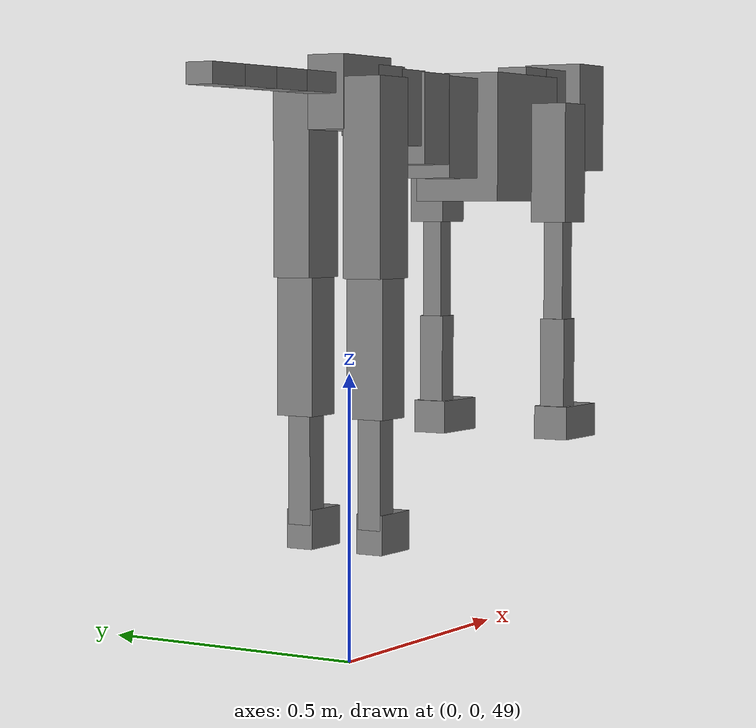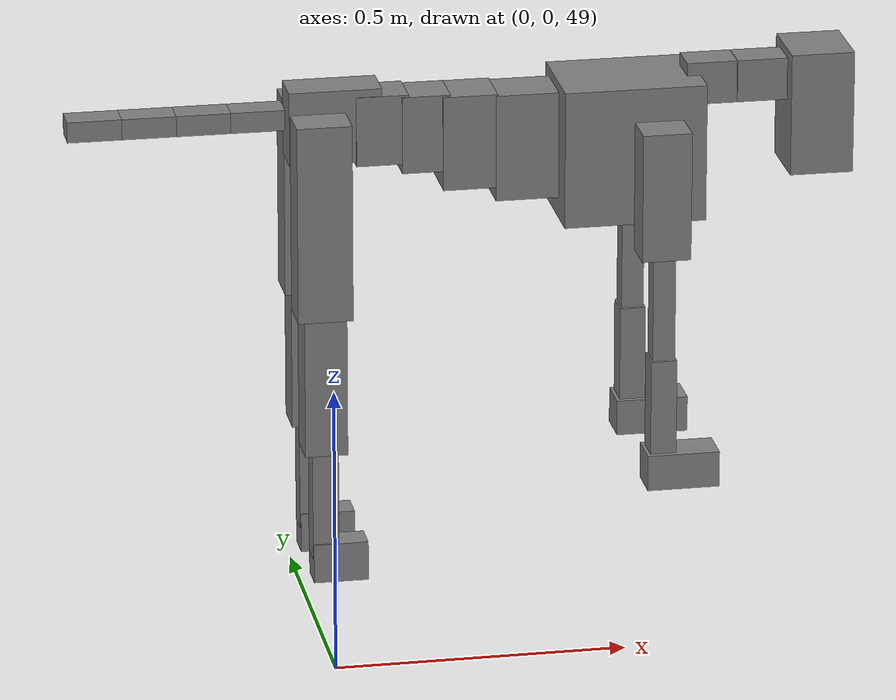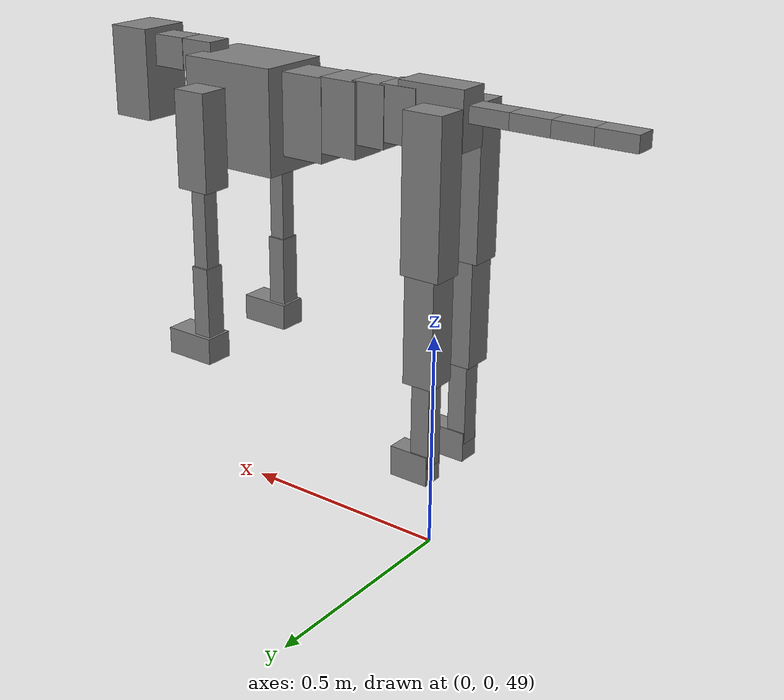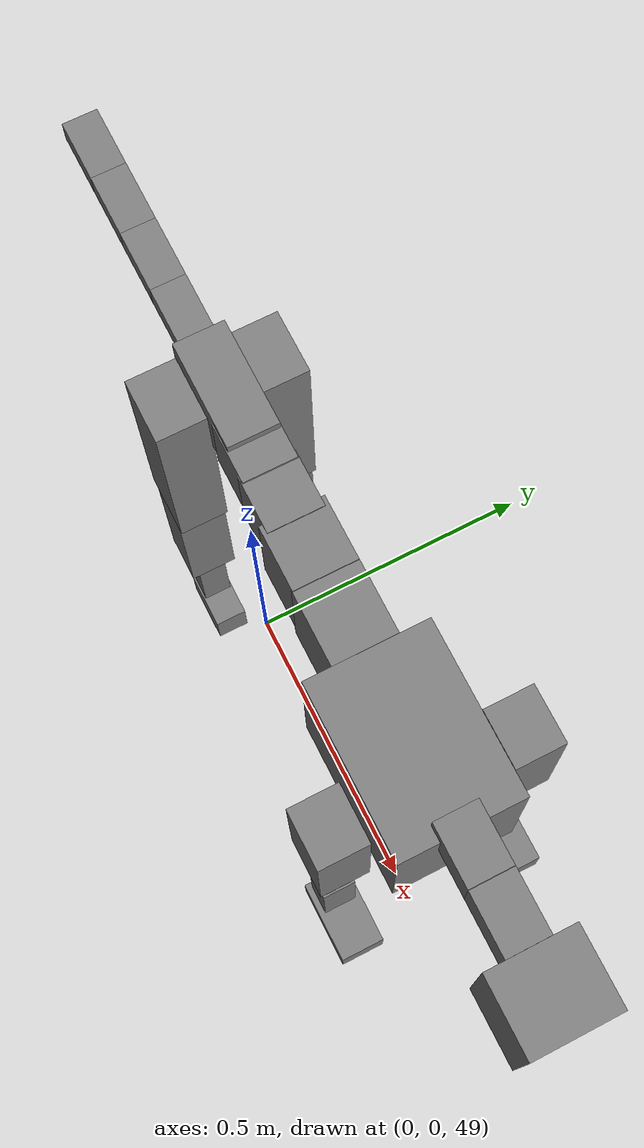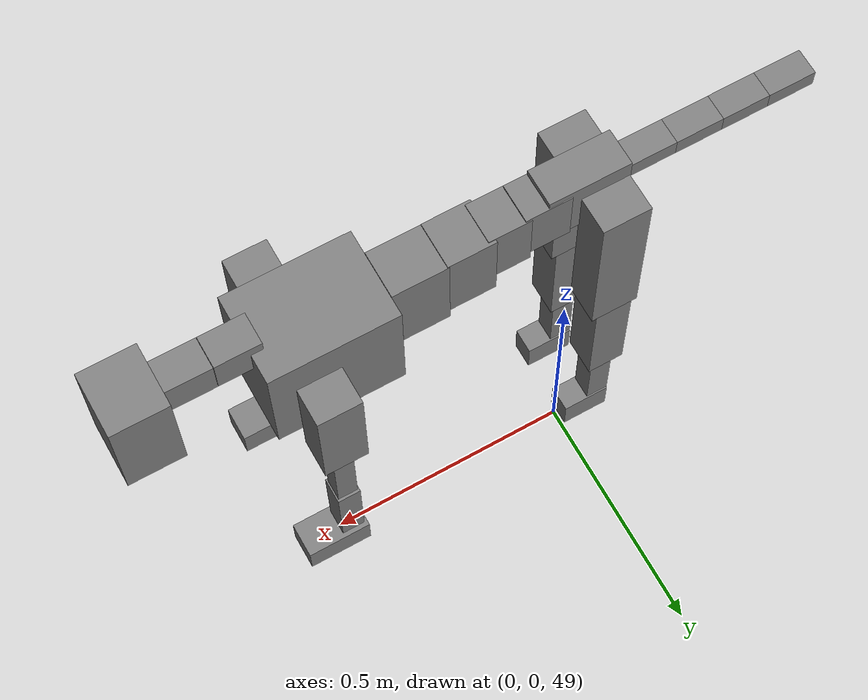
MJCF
<mujoco model="dog">

    <default>
        <joint armature="0.02" stiffness="1" damping="0.2" limited="true"/>
        <geom condim="3" friction="1 0.05 0.05" margin="0.01"/>
        <motor ctrllimited="true" ctrlrange="-1.0 1.0" forcelimited="true" gear="50"/>
    </default>

    <compiler inertiafromgeom="true" angle="radian"/>

    <option timestep="0.016" iterations="50" tolerance="1e-10" solver="Newton" jacobian="dense" cone="pyramidal"/>

    <size nconmax="20000" njmax="60000" nstack="5000000"/>
    <visual>
        <map force="0.1" zfar="30"/>
        <rgba haze="0.15 0.25 0.35 1"/>
        <quality shadowsize="2048"/>
        <global offwidth="800" offheight="800"/>
    </visual>

    <asset>
        <texture type="skybox" builtin="gradient" rgb1="0.3 0.5 0.7" rgb2="0 0 0" width="512" height="512"/>
        <texture name="texplane" type="2d" builtin="checker" rgb1=".2 .3 .4" rgb2=".1 0.15 0.2" width="512" height="512"
                 mark="cross" markrgb=".8 .8 .8"/>
        <texture name="texgeom" type="cube" builtin="flat" mark="cross" width="127" height="1278" rgb1="0.8 0.6 0.4"
                 rgb2="0.8 0.6 0.4" markrgb="1 1 1" random="0.01"/>

        <material name="matplane" reflectance="0.3" texture="texplane" texrepeat="1 1" texuniform="true"/>
        <material name="matgeom" texture="texgeom" texuniform="true" rgba="0.8 0.6 .4 1"/>
    </asset>

    <worldbody>
        <geom name="floor" pos="0 0 0" size="0 0 .25" type="plane" material="matplane" condim="3"/>

        <light directional="false" diffuse=".2 .2 .2" specular="0 0 0" pos="0 0 5" dir="0 0 -1" castshadow="false"/>
        <light mode="targetbodycom" target="torso" directional="false" diffuse=".8 .8 .8" specular="0.3 0.3 0.3"
               pos="0 0 4.0" dir="0 0 -1"/>

        <body name="root" pos="0 0 50">
            <freejoint name="root_1"/>
            <geom type="box" pos="0 0 -0.02" size="0.0774  0.0358  0.063" density="2030"/>

            <body name="spine1" pos="0.054 0 0">
                <joint name="spine1_y" axis="0 1 0" range="0 0.7" limited="true"/>
                <geom type="box" pos="0.02375 0 -0.03" size="0.04375  0.0375  0.05985" density="2030"/>

                <body name="spine2" pos="0.0612 0 0">
                    <joint name="spine2_y" axis="0 1 0" range="-0.15 0.15" limited="true"/>
                    <geom type="box" pos="0.03555  0  -0.04" size="0.04055  0.039  0.06615" density="2030"/>

                    <body name="spine3" pos="0.0730 0 0">
                        <joint name="spine3_y" axis="0 1 0" range="-0.15 0.15" limited="true"/>
                        <geom type="box" pos="0.03555  0  -0.057" size="0.04555  0.0445  0.081" density="2030"/>

                        <body name="spine4" pos="0.0780 0 0">
                            <joint name="spine4_y" axis="0 1 0" range="-0.15 0.15" limited="true"/>
                            <geom type="box" pos="0.05265  0  -0.07" size="0.05265  0.045  0.09135" density="2030"/>

                            <body name="torso" pos="0.1082 0 0">
                                <joint name="torso_y" axis="0 1 0" range="-0.15 0.15" limited="true"/>
                                <geom type="box" pos="0.11925  0  -0.085" size="0.11925  0.085  0.11745"
                                      density="2030"/>

                                <body name="neck1" pos="0.2160  0   0.0180">
                                    <joint name="neck1_y" axis="0 1 0" range="-1.2  -1" limited="true"/>
                                    <geom type="box" pos="0.0423  0  0" size="0.0423  0.03  0.036" density="2325"/>

                                    <body name="neck2" pos="0.0853  0  0">
                                        <joint name="neck2_y" axis="0 1 0" range="0.1  0" limited="true"/>
                                        <geom type="box" pos="0.0423  0  0" size="0.0423  0.03  0.036" density="2325"/>

                                        <body name="head" pos="0.0853  0  0">
                                            <joint name="head_y" axis="0 1 0" range="-0.3  -0.2" limited="true"/>
                                            <geom type="box" pos="0.0531  0  -0.055" size="0.0531  0.06  0.1044"
                                                  density="4030"/>

                                        </body>
                                    </body>
                                </body>

                                <body name="front_shoulder" pos="0.156  0   -0.0480">
                                    <joint name="front_shoulder_y" axis="0 1 0" range="-1 1.5" limited="true"/>
                                    <geom type="box" pos="0 0.13 -0.0835" size="0.0409  0.0349  0.1101" density="1158"/>
                                    <geom type="box" pos="0 -0.13 -0.0835" size="0.0409  0.0349  0.1101"
                                          density="1158"/>

                                    <body name="front_elbow" pos="0  0  -0.1669">
                                        <joint name="front_elbow_y" axis="0 1 0" range="-2 0" limited="true"/>
                                        <geom type="box" pos="0 0.13 -0.1104" size="0.0189  0.0193  0.1104"
                                              density="1081"/>
                                        <geom type="box" pos="0 -0.13 -0.1104" size="0.0189  0.0193  0.1104"
                                              density="1081"/>

                                        <body name="front_wrist" pos="0  0  -0.2207">
                                            <joint name="front_wrist_y" axis="0 1 0" range="-0.2 0" limited="true"/>
                                            <geom type="box" pos="0 0.13 -0.0828" size="0.0218  0.0243  0.0959"
                                                  density="1664"/>
                                            <geom type="box" pos="0 -0.13 -0.0828" size="0.0218  0.0243  0.0959"
                                                  density="1664"/>

                                            <body name="front_finger_end" pos="0  0  -0.1656">
                                                <joint name="front_finger_y" axis="0 1 0" range="-0.4 1"
                                                       limited="true"/>
                                                <geom type="box" pos="0.0332  0.13  -0.0158"
                                                      size="0.0609  0.0332  0.0308" density="1515"/>
                                                <geom type="box" pos="0.0332  -0.13  -0.0158"
                                                      size="0.0609  0.0332  0.0308" density="1515"/>

                                            </body>

                                        </body>
                                    </body>
                                </body>

                            </body>
                        </body>
                    </body>
                </body>
            </body>

            <body name="back_hip" pos="-0.03 0 -0.018">
                <joint name="back_hip_y" axis="0 1 0" range="-1.5 0.3" limited="true"/>
                <geom type="box" pos="0 0.07 -0.1466" size="0.0459  0.0360  0.1694" density="1154"/>
                <geom type="box" pos="0 -0.07 -0.1466" size="0.0459  0.0360  0.1694" density="1154"/>

                <body name="back_knee" pos="0  0  -0.2932">
                    <joint name="back_knee_y" axis="0 1 0" range="0 2.8" limited="true"/>
                    <geom type="box" pos="0 0.07 -0.1221" size="0.0357  0.0352  0.1376" density="1227"/>
                    <geom type="box" pos="0 -0.07 -0.1221" size="0.0357  0.0352  0.1376" density="1227"/>

                    <body name="back_ankle" pos="0  0  -0.2442">
                        <joint name="back_ankle_y" axis="0 1 0" range="-2.2 0" limited="true"/>
                        <geom type="box" pos="0 0.07 -0.0965" size="0.0220  0.0220  0.1077" density="1284"/>
                        <geom type="box" pos="0 -0.07 -0.0965" size="0.0220  0.0220  0.1077" density="1284"/>

                        <body name="back_toe_end" pos="0  0  -0.1929">
                            <joint name="back_toe_y" axis="0 1 0" range="-0.4 1" limited="true"/>
                            <geom type="box" pos="0.0250  0.07  -0.0190" size="0.0459  0.0250  0.0340" density="1515"/>
                            <geom type="box" pos="0.0250  -0.07  -0.0190" size="0.0459  0.0250  0.0340" density="1515"/>

                        </body>
                    </body>
                </body>
            </body>

            <body name="tail1" pos="-0.074 0 -0.006">
                <joint name="tail1_y" axis="0 1 0" range="-0.2 0.2" limited="true"/>
                <geom type="box" pos="-0.0536  0  0" size="0.045  0.025  0.0175" density="1587"/>

                <body name="tail2" pos="-0.09 0 0">
                    <joint name="tail2_y" axis="0 1 0" range="-0.2 0.2" limited="true"/>
                    <geom type="box" pos="-0.0536  0  0" size="0.045  0.025  0.0175" density="1587"/>

                    <body name="tail3" pos="-0.09 0 0">
                        <joint name="tail3_y" axis="0 1 0" range="-0.2 0.2" limited="true"/>
                        <geom type="box" pos="-0.0536  0  0" size="0.045  0.025  0.0175" density="1587"/>

                        <body name="tail4" pos="-0.09 0 0">
                            <joint name="tail4_y" axis="0 1 0" range="-0.2 0.2" limited="true"/>
                            <geom type="box" pos="-0.0536  0  0" size="0.045  0.025  0.0175" density="1587"/>

                        </body>
                    </body>
                </body>
            </body>
        </body>
    </worldbody>

    <actuator>
        <motor joint="spine1_y" forcerange="-150 150     "/>
        <motor joint="spine2_y" forcerange="-150 150     "/>
        <motor joint="spine3_y" forcerange="-150 150     "/>
        <motor joint="spine4_y" forcerange="-150 150     "/>
        <motor joint="torso_y" forcerange="-150 150     "/>
        <motor joint="neck1_y" forcerange="-100 100       "/>
        <motor joint="neck2_y" forcerange="-100 100       "/>
        <motor joint="head_y" forcerange="-150 150       "/>
        <motor joint="front_shoulder_y" forcerange="-152.53 180.29"/>
        <motor joint="front_elbow_y" forcerange="-109.32 131.05"/>
        <motor joint="front_wrist_y" forcerange="-134.37 59.83"/>
        <motor joint="front_finger_y" forcerange="-78.53 58.63"/>
        <motor joint="back_hip_y" forcerange="-308.40 371.33"/>
        <motor joint="back_knee_y" forcerange="-395.81 316.53"/>
        <motor joint="back_angle_y" forcerange="-74.04 177.43"/>
        <motor joint="back_toe_y" forcerange="-76.41 43.85"/>
        <motor joint="tail1_y" forcerange="-50 50     "/>
        <motor joint="tail2_y" forcerange="-50 50     "/>
        <motor joint="tail3_y" forcerange="-50 50     "/>
        <motor joint="tail4_y" forcerange="-50 50     "/>
    </actuator>
</mujoco>
